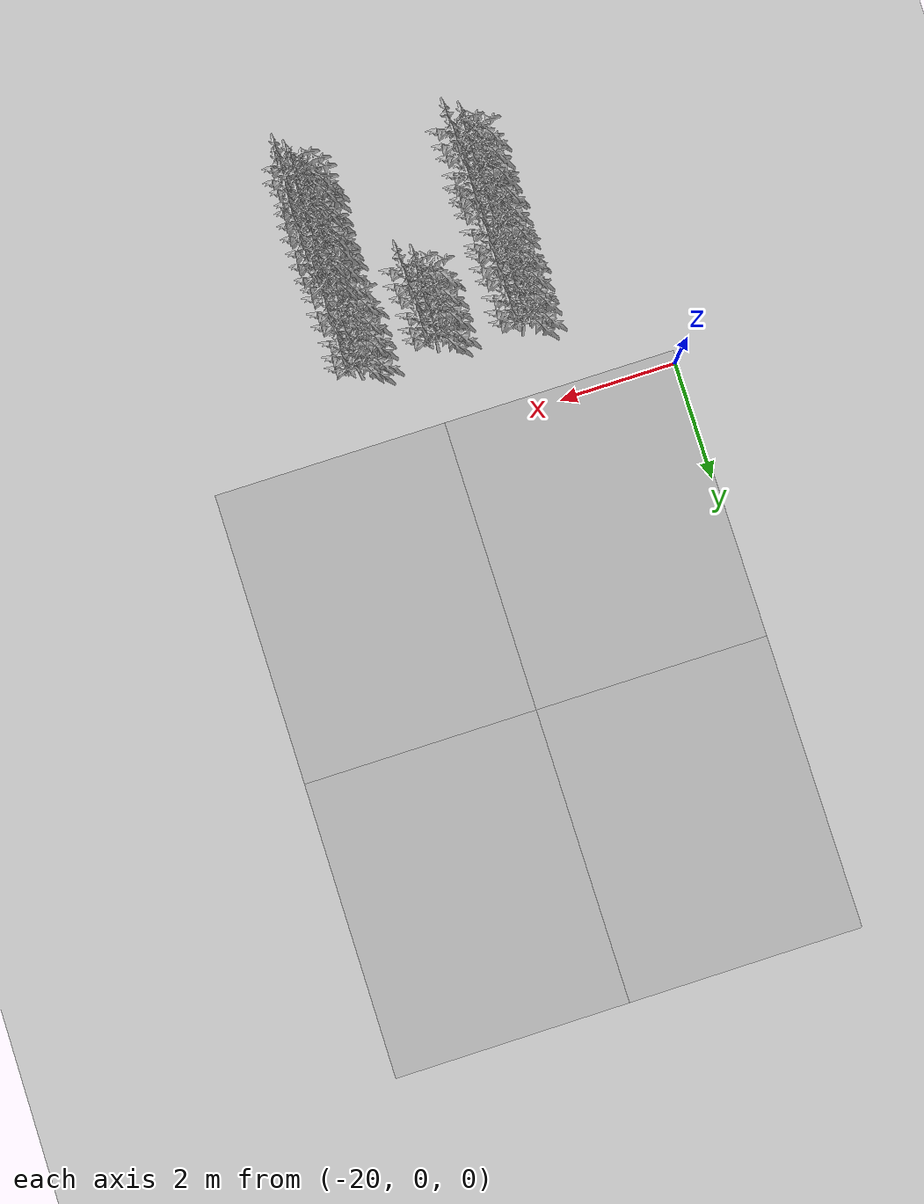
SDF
<sdf version="1.6">
 <world name="default">
  <model name="ground_plane">
   <static>1</static>
   <link name="link">
    <collision name="collision">
     <geometry><plane><normal>0 0 1</normal><size>100 100</size></plane></geometry>
     <surface>
      <contact><collide_bitmask>65535</collide_bitmask></contact>
      <friction><ode><mu>100</mu><mu2>50</mu2></ode></friction>
     </surface>
    </collision>
    <visual name="visual">
     <cast_shadows>0</cast_shadows>
     <geometry><plane><normal>0 0 1</normal><size>100 100</size></plane></geometry>
     <material>
      <script><uri>file://media/materials/scripts/gazebo.material</uri><name>Gazebo/Grey</name></script>
     </material>
    </visual>
   </link>
  </model>
  <model name="mud_box">
   <static>1</static>
   <link name="link">
    <collision name="collision"><geometry><box><size>8 10 0.02</size></box></geometry></collision>
    <visual name="visual_1">
     <pose>-2 2.5 0 0 -0 0</pose>
     <cast_shadows>0</cast_shadows>
     <geometry><box><size>4 5 0.02</size></box></geometry>
     <material>
      <script>
       <uri>model://mud_box/materials/scripts</uri>
       <uri>model://mud_box/materials/textures</uri>
       <name>vrc/mud</name>
      </script>
     </material>
    </visual>
    <visual name="visual_2">
     <pose>2 2.5 0 0 -0 0</pose>
     <cast_shadows>0</cast_shadows>
     <geometry><box><size>4 5 0.02</size></box></geometry>
     <material>
      <script>
       <uri>model://mud_box/materials/scripts</uri>
       <uri>model://mud_box/materials/textures</uri>
       <name>vrc/mud</name>
      </script>
     </material>
    </visual>
    <visual name="visual_3">
     <pose>2 -2.5 0 0 -0 0</pose>
     <cast_shadows>0</cast_shadows>
     <geometry><box><size>4 5 0.02</size></box></geometry>
     <material>
      <script>
       <uri>model://mud_box/materials/scripts</uri>
       <uri>model://mud_box/materials/textures</uri>
       <name>vrc/mud</name>
      </script>
     </material>
    </visual>
    <visual name="visual_4">
     <pose>-2 -2.5 0 0 -0 0</pose>
     <cast_shadows>0</cast_shadows>
     <geometry><box><size>4 5 0.02</size></box></geometry>
     <material>
      <script>
       <uri>model://mud_box/materials/scripts</uri>
       <uri>model://mud_box/materials/textures</uri>
       <name>vrc/mud</name>
      </script>
     </material>
    </visual>
   </link>
   <pose>-16.0443 4.76987 0 0 -0 0</pose>
  </model>
  <model name="Front_Plant_1_8">
   <model name="tomato_plant_medium">
    <static>1</static>
    <link name="link">
     <collision name="collision">
      <pose>0 0 0 1.5708 -0 0</pose>
      <geometry><mesh><scale>0.5 0.5 0.5</scale><uri>model://stick/meshes/stick.dae</uri></mesh></geometry>
     </collision>
     <visual name="visual">
      <geometry>
       <mesh><scale>5e-06 5e-06 6e-06</scale><uri>model://tomato_plant_medium/meshes/tomato-plant.dae</uri></mesh>
      </geometry>
     </visual>
    </link>
    <pose>0.087453 -0.595994 0.012396 0 -0 0</pose>
   </model>
   <model name="tomato_plant_medium_0">
    <static>1</static>
    <link name="link">
     <collision name="collision">
      <pose>0 0 0 1.5708 -0 0</pose>
      <geometry><mesh><scale>0.5 0.5 0.5</scale><uri>model://stick/meshes/stick.dae</uri></mesh></geometry>
     </collision>
     <visual name="visual">
      <geometry>
       <mesh><scale>5e-06 5e-06 6e-06</scale><uri>model://tomato_plant_medium/meshes/tomato-plant.dae</uri></mesh>
      </geometry>
     </visual>
    </link>
    <pose>-0.086166 -0.251822 0.012396 0 -0 0</pose>
   </model>
   <model name="tomato_plant_medium_1">
    <static>1</static>
    <link name="link">
     <collision name="collision">
      <pose>0 0 0 1.5708 -0 0</pose>
      <geometry><mesh><scale>0.5 0.5 0.5</scale><uri>model://stick/meshes/stick.dae</uri></mesh></geometry>
     </collision>
     <visual name="visual">
      <geometry>
       <mesh><scale>5e-06 5e-06 6e-06</scale><uri>model://tomato_plant_medium/meshes/tomato-plant.dae</uri></mesh>
      </geometry>
     </visual>
    </link>
    <pose>0.080199 0.118127 0.012396 0 -0 0</pose>
   </model>
   <model name="tomato_plant_small">
    <static>1</static>
    <link name="link">
     <collision name="collision">
      <pose>0 0 0 1.5708 -0 0</pose>
      <geometry><mesh><scale>0.5 0.45 0.5</scale><uri>model://stick/meshes/stick.dae</uri></mesh></geometry>
     </collision>
     <visual name="visual">
      <geometry>
       <mesh><scale>5e-06 5e-06 5e-06</scale><uri>model://tomato_plant_small/meshes/tomato-plant.dae</uri></mesh>
      </geometry>
     </visual>
    </link>
    <pose>0.099683 -1.12011 0.012396 0 -0 0</pose>
   </model>
   <model name="tomato_plant_small_0">
    <static>1</static>
    <link name="link">
     <collision name="collision">
      <pose>0 0 0 1.5708 -0 0</pose>
      <geometry><mesh><scale>0.5 0.45 0.5</scale><uri>model://stick/meshes/stick.dae</uri></mesh></geometry>
     </collision>
     <visual name="visual">
      <geometry>
       <mesh><scale>5e-06 5e-06 5e-06</scale><uri>model://tomato_plant_small/meshes/tomato-plant.dae</uri></mesh>
      </geometry>
     </visual>
    </link>
    <pose>-0.138771 -0.983982 0.012396 0 -0 0</pose>
   </model>
   <model name="tomato_plant_small_1">
    <static>1</static>
    <link name="link">
     <collision name="collision">
      <pose>0 0 0 1.5708 -0 0</pose>
      <geometry><mesh><scale>0.5 0.45 0.5</scale><uri>model://stick/meshes/stick.dae</uri></mesh></geometry>
     </collision>
     <visual name="visual">
      <geometry>
       <mesh><scale>5e-06 5e-06 5e-06</scale><uri>model://tomato_plant_small/meshes/tomato-plant.dae</uri></mesh>
      </geometry>
     </visual>
    </link>
    <pose>0.101334 -0.848814 0.012396 0 -0 0</pose>
   </model>
   <model name="tomato_plant_small_2">
    <static>1</static>
    <link name="link">
     <collision name="collision">
      <pose>0 0 0 1.5708 -0 0</pose>
      <geometry><mesh><scale>0.5 0.45 0.5</scale><uri>model://stick/meshes/stick.dae</uri></mesh></geometry>
     </collision>
     <visual name="visual">
      <geometry>
       <mesh><scale>5e-06 5e-06 5e-06</scale><uri>model://tomato_plant_small/meshes/tomato-plant.dae</uri></mesh>
      </geometry>
     </visual>
    </link>
    <pose>-0.103369 -0.683189 0.012396 0 -0 0</pose>
   </model>
   <model name="tomato_plant_small_3">
    <static>1</static>
    <link name="link">
     <collision name="collision">
      <pose>0 0 0 1.5708 -0 0</pose>
      <geometry><mesh><scale>0.5 0.45 0.5</scale><uri>model://stick/meshes/stick.dae</uri></mesh></geometry>
     </collision>
     <visual name="visual">
      <geometry>
       <mesh><scale>5e-06 5e-06 5e-06</scale><uri>model://tomato_plant_small/meshes/tomato-plant.dae</uri></mesh>
      </geometry>
     </visual>
    </link>
    <pose>-0.104381 -0.464811 0.012396 0 -0 0</pose>
   </model>
   <model name="tomato_plant_small_4">
    <static>1</static>
    <link name="link">
     <collision name="collision">
      <pose>0 0 0 1.5708 -0 0</pose>
      <geometry><mesh><scale>0.5 0.45 0.5</scale><uri>model://stick/meshes/stick.dae</uri></mesh></geometry>
     </collision>
     <visual name="visual">
      <geometry>
       <mesh><scale>5e-06 5e-06 5e-06</scale><uri>model://tomato_plant_small/meshes/tomato-plant.dae</uri></mesh>
      </geometry>
     </visual>
    </link>
    <pose>0.055604 -0.336879 0.012396 0 -0 0</pose>
   </model>
   <model name="tomato_plant_small_5">
    <static>1</static>
    <link name="link">
     <collision name="collision">
      <pose>0 0 0 1.5708 -0 0</pose>
      <geometry><mesh><scale>0.5 0.45 0.5</scale><uri>model://stick/meshes/stick.dae</uri></mesh></geometry>
     </collision>
     <visual name="visual">
      <geometry>
       <mesh><scale>5e-06 5e-06 5e-06</scale><uri>model://tomato_plant_small/meshes/tomato-plant.dae</uri></mesh>
      </geometry>
     </visual>
    </link>
    <pose>0.085059 -0.092572 0.012396 0 -0 0</pose>
   </model>
   <model name="tomato_plant_small_6">
    <static>1</static>
    <link name="link">
     <collision name="collision">
      <pose>0 0 0 1.5708 -0 0</pose>
      <geometry><mesh><scale>0.5 0.45 0.5</scale><uri>model://stick/meshes/stick.dae</uri></mesh></geometry>
     </collision>
     <visual name="visual">
      <geometry>
       <mesh><scale>5e-06 5e-06 5e-06</scale><uri>model://tomato_plant_small/meshes/tomato-plant.dae</uri></mesh>
      </geometry>
     </visual>
    </link>
    <pose>-0.096345 0.008888 0.012396 0 -0 0</pose>
   </model>
   <static>0</static>
   <pose>-17.809 -3.50699 0 0 -0 0</pose>
  </model>
  <model name="Front_Plant_1_9">
   <model name="tomato_plant_medium">
    <static>1</static>
    <link name="link">
     <collision name="collision">
      <pose>0 0 0 1.5708 -0 0</pose>
      <geometry><mesh><scale>0.5 0.5 0.5</scale><uri>model://stick/meshes/stick.dae</uri></mesh></geometry>
     </collision>
     <visual name="visual">
      <geometry>
       <mesh><scale>5e-06 5e-06 6e-06</scale><uri>model://tomato_plant_medium/meshes/tomato-plant.dae</uri></mesh>
      </geometry>
     </visual>
    </link>
    <pose>0.087453 -0.595994 0.012396 0 -0 0</pose>
   </model>
   <model name="tomato_plant_medium_0">
    <static>1</static>
    <link name="link">
     <collision name="collision">
      <pose>0 0 0 1.5708 -0 0</pose>
      <geometry><mesh><scale>0.5 0.5 0.5</scale><uri>model://stick/meshes/stick.dae</uri></mesh></geometry>
     </collision>
     <visual name="visual">
      <geometry>
       <mesh><scale>5e-06 5e-06 6e-06</scale><uri>model://tomato_plant_medium/meshes/tomato-plant.dae</uri></mesh>
      </geometry>
     </visual>
    </link>
    <pose>-0.086166 -0.251822 0.012396 0 -0 0</pose>
   </model>
   <model name="tomato_plant_medium_1">
    <static>1</static>
    <link name="link">
     <collision name="collision">
      <pose>0 0 0 1.5708 -0 0</pose>
      <geometry><mesh><scale>0.5 0.5 0.5</scale><uri>model://stick/meshes/stick.dae</uri></mesh></geometry>
     </collision>
     <visual name="visual">
      <geometry>
       <mesh><scale>5e-06 5e-06 6e-06</scale><uri>model://tomato_plant_medium/meshes/tomato-plant.dae</uri></mesh>
      </geometry>
     </visual>
    </link>
    <pose>0.080199 0.118127 0.012396 0 -0 0</pose>
   </model>
   <model name="tomato_plant_small">
    <static>1</static>
    <link name="link">
     <collision name="collision">
      <pose>0 0 0 1.5708 -0 0</pose>
      <geometry><mesh><scale>0.5 0.45 0.5</scale><uri>model://stick/meshes/stick.dae</uri></mesh></geometry>
     </collision>
     <visual name="visual">
      <geometry>
       <mesh><scale>5e-06 5e-06 5e-06</scale><uri>model://tomato_plant_small/meshes/tomato-plant.dae</uri></mesh>
      </geometry>
     </visual>
    </link>
    <pose>0.099683 -1.12011 0.012396 0 -0 0</pose>
   </model>
   <model name="tomato_plant_small_0">
    <static>1</static>
    <link name="link">
     <collision name="collision">
      <pose>0 0 0 1.5708 -0 0</pose>
      <geometry><mesh><scale>0.5 0.45 0.5</scale><uri>model://stick/meshes/stick.dae</uri></mesh></geometry>
     </collision>
     <visual name="visual">
      <geometry>
       <mesh><scale>5e-06 5e-06 5e-06</scale><uri>model://tomato_plant_small/meshes/tomato-plant.dae</uri></mesh>
      </geometry>
     </visual>
    </link>
    <pose>-0.138771 -0.983982 0.012396 0 -0 0</pose>
   </model>
   <model name="tomato_plant_small_1">
    <static>1</static>
    <link name="link">
     <collision name="collision">
      <pose>0 0 0 1.5708 -0 0</pose>
      <geometry><mesh><scale>0.5 0.45 0.5</scale><uri>model://stick/meshes/stick.dae</uri></mesh></geometry>
     </collision>
     <visual name="visual">
      <geometry>
       <mesh><scale>5e-06 5e-06 5e-06</scale><uri>model://tomato_plant_small/meshes/tomato-plant.dae</uri></mesh>
      </geometry>
     </visual>
    </link>
    <pose>0.101334 -0.848814 0.012396 0 -0 0</pose>
   </model>
   <model name="tomato_plant_small_2">
    <static>1</static>
    <link name="link">
     <collision name="collision">
      <pose>0 0 0 1.5708 -0 0</pose>
      <geometry><mesh><scale>0.5 0.45 0.5</scale><uri>model://stick/meshes/stick.dae</uri></mesh></geometry>
     </collision>
     <visual name="visual">
      <geometry>
       <mesh><scale>5e-06 5e-06 5e-06</scale><uri>model://tomato_plant_small/meshes/tomato-plant.dae</uri></mesh>
      </geometry>
     </visual>
    </link>
    <pose>-0.103369 -0.683189 0.012396 0 -0 0</pose>
   </model>
   <model name="tomato_plant_small_3">
    <static>1</static>
    <link name="link">
     <collision name="collision">
      <pose>0 0 0 1.5708 -0 0</pose>
      <geometry><mesh><scale>0.5 0.45 0.5</scale><uri>model://stick/meshes/stick.dae</uri></mesh></geometry>
     </collision>
     <visual name="visual">
      <geometry>
       <mesh><scale>5e-06 5e-06 5e-06</scale><uri>model://tomato_plant_small/meshes/tomato-plant.dae</uri></mesh>
      </geometry>
     </visual>
    </link>
    <pose>-0.104381 -0.464811 0.012396 0 -0 0</pose>
   </model>
   <model name="tomato_plant_small_4">
    <static>1</static>
    <link name="link">
     <collision name="collision">
      <pose>0 0 0 1.5708 -0 0</pose>
      <geometry><mesh><scale>0.5 0.45 0.5</scale><uri>model://stick/meshes/stick.dae</uri></mesh></geometry>
     </collision>
     <visual name="visual">
      <geometry>
       <mesh><scale>5e-06 5e-06 5e-06</scale><uri>model://tomato_plant_small/meshes/tomato-plant.dae</uri></mesh>
      </geometry>
     </visual>
    </link>
    <pose>0.055604 -0.336879 0.012396 0 -0 0</pose>
   </model>
   <model name="tomato_plant_small_5">
    <static>1</static>
    <link name="link">
     <collision name="collision">
      <pose>0 0 0 1.5708 -0 0</pose>
      <geometry><mesh><scale>0.5 0.45 0.5</scale><uri>model://stick/meshes/stick.dae</uri></mesh></geometry>
     </collision>
     <visual name="visual">
      <geometry>
       <mesh><scale>5e-06 5e-06 5e-06</scale><uri>model://tomato_plant_small/meshes/tomato-plant.dae</uri></mesh>
      </geometry>
     </visual>
    </link>
    <pose>0.085059 -0.092572 0.012396 0 -0 0</pose>
   </model>
   <model name="tomato_plant_small_6">
    <static>1</static>
    <link name="link">
     <collision name="collision">
      <pose>0 0 0 1.5708 -0 0</pose>
      <geometry><mesh><scale>0.5 0.45 0.5</scale><uri>model://stick/meshes/stick.dae</uri></mesh></geometry>
     </collision>
     <visual name="visual">
      <geometry>
       <mesh><scale>5e-06 5e-06 5e-06</scale><uri>model://tomato_plant_small/meshes/tomato-plant.dae</uri></mesh>
      </geometry>
     </visual>
    </link>
    <pose>-0.096345 0.008888 0.012396 0 -0 0</pose>
   </model>
   <static>0</static>
   <pose>-17.8073 -2.52385 0 0 -0 0</pose>
  </model>
  <model name="Front_Plant_1_10">
   <model name="tomato_plant_medium">
    <static>1</static>
    <link name="link">
     <collision name="collision">
      <pose>0 0 0 1.5708 -0 0</pose>
      <geometry><mesh><scale>0.5 0.5 0.5</scale><uri>model://stick/meshes/stick.dae</uri></mesh></geometry>
     </collision>
     <visual name="visual">
      <geometry>
       <mesh><scale>5e-06 5e-06 6e-06</scale><uri>model://tomato_plant_medium/meshes/tomato-plant.dae</uri></mesh>
      </geometry>
     </visual>
    </link>
    <pose>0.087453 -0.595994 0.012396 0 -0 0</pose>
   </model>
   <model name="tomato_plant_medium_0">
    <static>1</static>
    <link name="link">
     <collision name="collision">
      <pose>0 0 0 1.5708 -0 0</pose>
      <geometry><mesh><scale>0.5 0.5 0.5</scale><uri>model://stick/meshes/stick.dae</uri></mesh></geometry>
     </collision>
     <visual name="visual">
      <geometry>
       <mesh><scale>5e-06 5e-06 6e-06</scale><uri>model://tomato_plant_medium/meshes/tomato-plant.dae</uri></mesh>
      </geometry>
     </visual>
    </link>
    <pose>-0.086166 -0.251822 0.012396 0 -0 0</pose>
   </model>
   <model name="tomato_plant_medium_1">
    <static>1</static>
    <link name="link">
     <collision name="collision">
      <pose>0 0 0 1.5708 -0 0</pose>
      <geometry><mesh><scale>0.5 0.5 0.5</scale><uri>model://stick/meshes/stick.dae</uri></mesh></geometry>
     </collision>
     <visual name="visual">
      <geometry>
       <mesh><scale>5e-06 5e-06 6e-06</scale><uri>model://tomato_plant_medium/meshes/tomato-plant.dae</uri></mesh>
      </geometry>
     </visual>
    </link>
    <pose>0.080199 0.118127 0.012396 0 -0 0</pose>
   </model>
   <model name="tomato_plant_small">
    <static>1</static>
    <link name="link">
     <collision name="collision">
      <pose>0 0 0 1.5708 -0 0</pose>
      <geometry><mesh><scale>0.5 0.45 0.5</scale><uri>model://stick/meshes/stick.dae</uri></mesh></geometry>
     </collision>
     <visual name="visual">
      <geometry>
       <mesh><scale>5e-06 5e-06 5e-06</scale><uri>model://tomato_plant_small/meshes/tomato-plant.dae</uri></mesh>
      </geometry>
     </visual>
    </link>
    <pose>0.099683 -1.12011 0.012396 0 -0 0</pose>
   </model>
   <model name="tomato_plant_small_0">
    <static>1</static>
    <link name="link">
     <collision name="collision">
      <pose>0 0 0 1.5708 -0 0</pose>
      <geometry><mesh><scale>0.5 0.45 0.5</scale><uri>model://stick/meshes/stick.dae</uri></mesh></geometry>
     </collision>
     <visual name="visual">
      <geometry>
       <mesh><scale>5e-06 5e-06 5e-06</scale><uri>model://tomato_plant_small/meshes/tomato-plant.dae</uri></mesh>
      </geometry>
     </visual>
    </link>
    <pose>-0.138771 -0.983982 0.012396 0 -0 0</pose>
   </model>
   <model name="tomato_plant_small_1">
    <static>1</static>
    <link name="link">
     <collision name="collision">
      <pose>0 0 0 1.5708 -0 0</pose>
      <geometry><mesh><scale>0.5 0.45 0.5</scale><uri>model://stick/meshes/stick.dae</uri></mesh></geometry>
     </collision>
     <visual name="visual">
      <geometry>
       <mesh><scale>5e-06 5e-06 5e-06</scale><uri>model://tomato_plant_small/meshes/tomato-plant.dae</uri></mesh>
      </geometry>
     </visual>
    </link>
    <pose>0.101334 -0.848814 0.012396 0 -0 0</pose>
   </model>
   <model name="tomato_plant_small_2">
    <static>1</static>
    <link name="link">
     <collision name="collision">
      <pose>0 0 0 1.5708 -0 0</pose>
      <geometry><mesh><scale>0.5 0.45 0.5</scale><uri>model://stick/meshes/stick.dae</uri></mesh></geometry>
     </collision>
     <visual name="visual">
      <geometry>
       <mesh><scale>5e-06 5e-06 5e-06</scale><uri>model://tomato_plant_small/meshes/tomato-plant.dae</uri></mesh>
      </geometry>
     </visual>
    </link>
    <pose>-0.103369 -0.683189 0.012396 0 -0 0</pose>
   </model>
   <model name="tomato_plant_small_3">
    <static>1</static>
    <link name="link">
     <collision name="collision">
      <pose>0 0 0 1.5708 -0 0</pose>
      <geometry><mesh><scale>0.5 0.45 0.5</scale><uri>model://stick/meshes/stick.dae</uri></mesh></geometry>
     </collision>
     <visual name="visual">
      <geometry>
       <mesh><scale>5e-06 5e-06 5e-06</scale><uri>model://tomato_plant_small/meshes/tomato-plant.dae</uri></mesh>
      </geometry>
     </visual>
    </link>
    <pose>-0.104381 -0.464811 0.012396 0 -0 0</pose>
   </model>
   <model name="tomato_plant_small_4">
    <static>1</static>
    <link name="link">
     <collision name="collision">
      <pose>0 0 0 1.5708 -0 0</pose>
      <geometry><mesh><scale>0.5 0.45 0.5</scale><uri>model://stick/meshes/stick.dae</uri></mesh></geometry>
     </collision>
     <visual name="visual">
      <geometry>
       <mesh><scale>5e-06 5e-06 5e-06</scale><uri>model://tomato_plant_small/meshes/tomato-plant.dae</uri></mesh>
      </geometry>
     </visual>
    </link>
    <pose>0.055604 -0.336879 0.012396 0 -0 0</pose>
   </model>
   <model name="tomato_plant_small_5">
    <static>1</static>
    <link name="link">
     <collision name="collision">
      <pose>0 0 0 1.5708 -0 0</pose>
      <geometry><mesh><scale>0.5 0.45 0.5</scale><uri>model://stick/meshes/stick.dae</uri></mesh></geometry>
     </collision>
     <visual name="visual">
      <geometry>
       <mesh><scale>5e-06 5e-06 5e-06</scale><uri>model://tomato_plant_small/meshes/tomato-plant.dae</uri></mesh>
      </geometry>
     </visual>
    </link>
    <pose>0.085059 -0.092572 0.012396 0 -0 0</pose>
   </model>
   <model name="tomato_plant_small_6">
    <static>1</static>
    <link name="link">
     <collision name="collision">
      <pose>0 0 0 1.5708 -0 0</pose>
      <geometry><mesh><scale>0.5 0.45 0.5</scale><uri>model://stick/meshes/stick.dae</uri></mesh></geometry>
     </collision>
     <visual name="visual">
      <geometry>
       <mesh><scale>5e-06 5e-06 5e-06</scale><uri>model://tomato_plant_small/meshes/tomato-plant.dae</uri></mesh>
      </geometry>
     </visual>
    </link>
    <pose>-0.096345 0.008888 0.012396 0 -0 0</pose>
   </model>
   <static>0</static>
   <pose>-17.8093 -1.37891 0 0 -0 0</pose>
  </model>
  <model name="Front_Plant_1_11">
   <model name="tomato_plant_medium">
    <static>1</static>
    <link name="link">
     <collision name="collision">
      <pose>0 0 0 1.5708 -0 0</pose>
      <geometry><mesh><scale>0.5 0.5 0.5</scale><uri>model://stick/meshes/stick.dae</uri></mesh></geometry>
     </collision>
     <visual name="visual">
      <geometry>
       <mesh><scale>5e-06 5e-06 6e-06</scale><uri>model://tomato_plant_medium/meshes/tomato-plant.dae</uri></mesh>
      </geometry>
     </visual>
    </link>
    <pose>0.087453 -0.595994 0.012396 0 -0 0</pose>
   </model>
   <model name="tomato_plant_medium_0">
    <static>1</static>
    <link name="link">
     <collision name="collision">
      <pose>0 0 0 1.5708 -0 0</pose>
      <geometry><mesh><scale>0.5 0.5 0.5</scale><uri>model://stick/meshes/stick.dae</uri></mesh></geometry>
     </collision>
     <visual name="visual">
      <geometry>
       <mesh><scale>5e-06 5e-06 6e-06</scale><uri>model://tomato_plant_medium/meshes/tomato-plant.dae</uri></mesh>
      </geometry>
     </visual>
    </link>
    <pose>-0.086166 -0.251822 0.012396 0 -0 0</pose>
   </model>
   <model name="tomato_plant_medium_1">
    <static>1</static>
    <link name="link">
     <collision name="collision">
      <pose>0 0 0 1.5708 -0 0</pose>
      <geometry><mesh><scale>0.5 0.5 0.5</scale><uri>model://stick/meshes/stick.dae</uri></mesh></geometry>
     </collision>
     <visual name="visual">
      <geometry>
       <mesh><scale>5e-06 5e-06 6e-06</scale><uri>model://tomato_plant_medium/meshes/tomato-plant.dae</uri></mesh>
      </geometry>
     </visual>
    </link>
    <pose>0.080199 0.118127 0.012396 0 -0 0</pose>
   </model>
   <model name="tomato_plant_small">
    <static>1</static>
    <link name="link">
     <collision name="collision">
      <pose>0 0 0 1.5708 -0 0</pose>
      <geometry><mesh><scale>0.5 0.45 0.5</scale><uri>model://stick/meshes/stick.dae</uri></mesh></geometry>
     </collision>
     <visual name="visual">
      <geometry>
       <mesh><scale>5e-06 5e-06 5e-06</scale><uri>model://tomato_plant_small/meshes/tomato-plant.dae</uri></mesh>
      </geometry>
     </visual>
    </link>
    <pose>0.099683 -1.12011 0.012396 0 -0 0</pose>
   </model>
   <model name="tomato_plant_small_0">
    <static>1</static>
    <link name="link">
     <collision name="collision">
      <pose>0 0 0 1.5708 -0 0</pose>
      <geometry><mesh><scale>0.5 0.45 0.5</scale><uri>model://stick/meshes/stick.dae</uri></mesh></geometry>
     </collision>
     <visual name="visual">
      <geometry>
       <mesh><scale>5e-06 5e-06 5e-06</scale><uri>model://tomato_plant_small/meshes/tomato-plant.dae</uri></mesh>
      </geometry>
     </visual>
    </link>
    <pose>-0.138771 -0.983982 0.012396 0 -0 0</pose>
   </model>
   <model name="tomato_plant_small_1">
    <static>1</static>
    <link name="link">
     <collision name="collision">
      <pose>0 0 0 1.5708 -0 0</pose>
      <geometry><mesh><scale>0.5 0.45 0.5</scale><uri>model://stick/meshes/stick.dae</uri></mesh></geometry>
     </collision>
     <visual name="visual">
      <geometry>
       <mesh><scale>5e-06 5e-06 5e-06</scale><uri>model://tomato_plant_small/meshes/tomato-plant.dae</uri></mesh>
      </geometry>
     </visual>
    </link>
    <pose>0.101334 -0.848814 0.012396 0 -0 0</pose>
   </model>
   <model name="tomato_plant_small_2">
    <static>1</static>
    <link name="link">
     <collision name="collision">
      <pose>0 0 0 1.5708 -0 0</pose>
      <geometry><mesh><scale>0.5 0.45 0.5</scale><uri>model://stick/meshes/stick.dae</uri></mesh></geometry>
     </collision>
     <visual name="visual">
      <geometry>
       <mesh><scale>5e-06 5e-06 5e-06</scale><uri>model://tomato_plant_small/meshes/tomato-plant.dae</uri></mesh>
      </geometry>
     </visual>
    </link>
    <pose>-0.103369 -0.683189 0.012396 0 -0 0</pose>
   </model>
   <model name="tomato_plant_small_3">
    <static>1</static>
    <link name="link">
     <collision name="collision">
      <pose>0 0 0 1.5708 -0 0</pose>
      <geometry><mesh><scale>0.5 0.45 0.5</scale><uri>model://stick/meshes/stick.dae</uri></mesh></geometry>
     </collision>
     <visual name="visual">
      <geometry>
       <mesh><scale>5e-06 5e-06 5e-06</scale><uri>model://tomato_plant_small/meshes/tomato-plant.dae</uri></mesh>
      </geometry>
     </visual>
    </link>
    <pose>-0.104381 -0.464811 0.012396 0 -0 0</pose>
   </model>
   <model name="tomato_plant_small_4">
    <static>1</static>
    <link name="link">
     <collision name="collision">
      <pose>0 0 0 1.5708 -0 0</pose>
      <geometry><mesh><scale>0.5 0.45 0.5</scale><uri>model://stick/meshes/stick.dae</uri></mesh></geometry>
     </collision>
     <visual name="visual">
      <geometry>
       <mesh><scale>5e-06 5e-06 5e-06</scale><uri>model://tomato_plant_small/meshes/tomato-plant.dae</uri></mesh>
      </geometry>
     </visual>
    </link>
    <pose>0.055604 -0.336879 0.012396 0 -0 0</pose>
   </model>
   <model name="tomato_plant_small_5">
    <static>1</static>
    <link name="link">
     <collision name="collision">
      <pose>0 0 0 1.5708 -0 0</pose>
      <geometry><mesh><scale>0.5 0.45 0.5</scale><uri>model://stick/meshes/stick.dae</uri></mesh></geometry>
     </collision>
     <visual name="visual">
      <geometry>
       <mesh><scale>5e-06 5e-06 5e-06</scale><uri>model://tomato_plant_small/meshes/tomato-plant.dae</uri></mesh>
      </geometry>
     </visual>
    </link>
    <pose>0.085059 -0.092572 0.012396 0 -0 0</pose>
   </model>
   <model name="tomato_plant_small_6">
    <static>1</static>
    <link name="link">
     <collision name="collision">
      <pose>0 0 0 1.5708 -0 0</pose>
      <geometry><mesh><scale>0.5 0.45 0.5</scale><uri>model://stick/meshes/stick.dae</uri></mesh></geometry>
     </collision>
     <visual name="visual">
      <geometry>
       <mesh><scale>5e-06 5e-06 5e-06</scale><uri>model://tomato_plant_small/meshes/tomato-plant.dae</uri></mesh>
      </geometry>
     </visual>
    </link>
    <pose>-0.096345 0.008888 0.012396 0 -0 0</pose>
   </model>
   <static>0</static>
   <pose>-16.3842 -1.53283 0 0 -0 0</pose>
  </model>
  <model name="MIddle_Plant_1_1">
   <model name="tomato_plant_big">
    <static>1</static>
    <link name="link">
     <collision name="collision">
      <pose>0 0 0 1.5708 -0 0</pose>
      <geometry><mesh><scale>0.5 0.6 0.5</scale><uri>model://stick/meshes/stick.dae</uri></mesh></geometry>
     </collision>
     <visual name="visual">
      <geometry>
       <mesh><scale>5e-06 5e-06 7e-06</scale><uri>model://tomato_plant_big/meshes/tomato-plant.dae</uri></mesh>
      </geometry>
     </visual>
    </link>
    <pose>-0.144318 -0.693607 -0 0 -0 0</pose>
   </model>
   <model name="tomato_plant_big_0">
    <static>1</static>
    <link name="link">
     <collision name="collision">
      <pose>0 0 0 1.5708 -0 0</pose>
      <geometry><mesh><scale>0.5 0.6 0.5</scale><uri>model://stick/meshes/stick.dae</uri></mesh></geometry>
     </collision>
     <visual name="visual">
      <geometry>
       <mesh><scale>5e-06 5e-06 7e-06</scale><uri>model://tomato_plant_big/meshes/tomato-plant.dae</uri></mesh>
      </geometry>
     </visual>
    </link>
    <pose>-0.11784 -0.519827 0 0 -0 0</pose>
   </model>
   <model name="tomato_plant_big_1">
    <static>1</static>
    <link name="link">
     <collision name="collision">
      <pose>0 0 0 1.5708 -0 0</pose>
      <geometry><mesh><scale>0.5 0.6 0.5</scale><uri>model://stick/meshes/stick.dae</uri></mesh></geometry>
     </collision>
     <visual name="visual">
      <geometry>
       <mesh><scale>5e-06 5e-06 7e-06</scale><uri>model://tomato_plant_big/meshes/tomato-plant.dae</uri></mesh>
      </geometry>
     </visual>
    </link>
    <pose>0.073755 -0.247584 0 0 -0 0</pose>
   </model>
   <model name="tomato_plant_big_10">
    <static>1</static>
    <link name="link">
     <collision name="collision">
      <pose>0 0 0 1.5708 -0 0</pose>
      <geometry><mesh><scale>0.5 0.6 0.5</scale><uri>model://stick/meshes/stick.dae</uri></mesh></geometry>
     </collision>
     <visual name="visual">
      <geometry>
       <mesh><scale>5e-06 5e-06 7e-06</scale><uri>model://tomato_plant_big/meshes/tomato-plant.dae</uri></mesh>
      </geometry>
     </visual>
    </link>
    <pose>0.037052 1.07094 0 0 -0 0</pose>
   </model>
   <model name="tomato_plant_big_2">
    <static>1</static>
    <link name="link">
     <collision name="collision">
      <pose>0 0 0 1.5708 -0 0</pose>
      <geometry><mesh><scale>0.5 0.6 0.5</scale><uri>model://stick/meshes/stick.dae</uri></mesh></geometry>
     </collision>
     <visual name="visual">
      <geometry>
       <mesh><scale>5e-06 5e-06 7e-06</scale><uri>model://tomato_plant_big/meshes/tomato-plant.dae</uri></mesh>
      </geometry>
     </visual>
    </link>
    <pose>-0.076926 -0.131165 0 0 -0 0</pose>
   </model>
   <model name="tomato_plant_big_3">
    <static>1</static>
    <link name="link">
     <collision name="collision">
      <pose>0 0 0 1.5708 -0 0</pose>
      <geometry><mesh><scale>0.5 0.6 0.5</scale><uri>model://stick/meshes/stick.dae</uri></mesh></geometry>
     </collision>
     <visual name="visual">
      <geometry>
       <mesh><scale>5e-06 5e-06 7e-06</scale><uri>model://tomato_plant_big/meshes/tomato-plant.dae</uri></mesh>
      </geometry>
     </visual>
    </link>
    <pose>0.093714 -0.038386 0 0 -0 0</pose>
   </model>
   <model name="tomato_plant_big_4">
    <static>1</static>
    <link name="link">
     <collision name="collision">
      <pose>0 0 0 1.5708 -0 0</pose>
      <geometry><mesh><scale>0.5 0.6 0.5</scale><uri>model://stick/meshes/stick.dae</uri></mesh></geometry>
     </collision>
     <visual name="visual">
      <geometry>
       <mesh><scale>5e-06 5e-06 7e-06</scale><uri>model://tomato_plant_big/meshes/tomato-plant.dae</uri></mesh>
      </geometry>
     </visual>
    </link>
    <pose>0.103117 0.184356 0 0 -0 0</pose>
   </model>
   <model name="tomato_plant_big_5">
    <static>1</static>
    <link name="link">
     <collision name="collision">
      <pose>0 0 0 1.5708 -0 0</pose>
      <geometry><mesh><scale>0.5 0.6 0.5</scale><uri>model://stick/meshes/stick.dae</uri></mesh></geometry>
     </collision>
     <visual name="visual">
      <geometry>
       <mesh><scale>5e-06 5e-06 7e-06</scale><uri>model://tomato_plant_big/meshes/tomato-plant.dae</uri></mesh>
      </geometry>
     </visual>
    </link>
    <pose>-0.074883 0.301479 0 0 -0 0</pose>
   </model>
   <model name="tomato_plant_big_6">
    <static>1</static>
    <link name="link">
     <collision name="collision">
      <pose>0 0 0 1.5708 -0 0</pose>
      <geometry><mesh><scale>0.5 0.6 0.5</scale><uri>model://stick/meshes/stick.dae</uri></mesh></geometry>
     </collision>
     <visual name="visual">
      <geometry>
       <mesh><scale>5e-06 5e-06 7e-06</scale><uri>model://tomato_plant_big/meshes/tomato-plant.dae</uri></mesh>
      </geometry>
     </visual>
    </link>
    <pose>-0.096921 0.484007 0 0 -0 0</pose>
   </model>
   <model name="tomato_plant_big_7">
    <static>1</static>
    <link name="link">
     <collision name="collision">
      <pose>0 0 0 1.5708 -0 0</pose>
      <geometry><mesh><scale>0.5 0.6 0.5</scale><uri>model://stick/meshes/stick.dae</uri></mesh></geometry>
     </collision>
     <visual name="visual">
      <geometry>
       <mesh><scale>5e-06 5e-06 7e-06</scale><uri>model://tomato_plant_big/meshes/tomato-plant.dae</uri></mesh>
      </geometry>
     </visual>
    </link>
    <pose>0.107491 0.653976 0 0 -0 0</pose>
   </model>
   <model name="tomato_plant_big_8">
    <static>1</static>
    <link name="link">
     <collision name="collision">
      <pose>0 0 0 1.5708 -0 0</pose>
      <geometry><mesh><scale>0.5 0.6 0.5</scale><uri>model://stick/meshes/stick.dae</uri></mesh></geometry>
     </collision>
     <visual name="visual">
      <geometry>
       <mesh><scale>5e-06 5e-06 7e-06</scale><uri>model://tomato_plant_big/meshes/tomato-plant.dae</uri></mesh>
      </geometry>
     </visual>
    </link>
    <pose>-0.07985 0.768549 0 0 -0 0</pose>
   </model>
   <model name="tomato_plant_big_9">
    <static>1</static>
    <link name="link">
     <collision name="collision">
      <pose>0 0 0 1.5708 -0 0</pose>
      <geometry><mesh><scale>0.5 0.6 0.5</scale><uri>model://stick/meshes/stick.dae</uri></mesh></geometry>
     </collision>
     <visual name="visual">
      <geometry>
       <mesh><scale>5e-06 5e-06 7e-06</scale><uri>model://tomato_plant_big/meshes/tomato-plant.dae</uri></mesh>
      </geometry>
     </visual>
    </link>
    <pose>0.098361 0.890852 0 0 -0 0</pose>
   </model>
   <model name="tomato_plant_medium">
    <static>1</static>
    <link name="link">
     <collision name="collision">
      <pose>0 0 0 1.5708 -0 0</pose>
      <geometry><mesh><scale>0.5 0.5 0.5</scale><uri>model://stick/meshes/stick.dae</uri></mesh></geometry>
     </collision>
     <visual name="visual">
      <geometry>
       <mesh><scale>5e-06 5e-06 6e-06</scale><uri>model://tomato_plant_medium/meshes/tomato-plant.dae</uri></mesh>
      </geometry>
     </visual>
    </link>
    <pose>0.056913 -1.05328 0 0 -0 0</pose>
   </model>
   <model name="tomato_plant_medium_0">
    <static>1</static>
    <link name="link">
     <collision name="collision">
      <pose>0 0 0 1.5708 -0 0</pose>
      <geometry><mesh><scale>0.5 0.5 0.5</scale><uri>model://stick/meshes/stick.dae</uri></mesh></geometry>
     </collision>
     <visual name="visual">
      <geometry>
       <mesh><scale>5e-06 5e-06 6e-06</scale><uri>model://tomato_plant_medium/meshes/tomato-plant.dae</uri></mesh>
      </geometry>
     </visual>
    </link>
    <pose>-0.092719 -0.905729 0 0 -0 0</pose>
   </model>
   <model name="tomato_plant_medium_1">
    <static>1</static>
    <link name="link">
     <collision name="collision">
      <pose>0 0 0 1.5708 -0 0</pose>
      <geometry><mesh><scale>0.5 0.5 0.5</scale><uri>model://stick/meshes/stick.dae</uri></mesh></geometry>
     </collision>
     <visual name="visual">
      <geometry>
       <mesh><scale>5e-06 5e-06 6e-06</scale><uri>model://tomato_plant_medium/meshes/tomato-plant.dae</uri></mesh>
      </geometry>
     </visual>
    </link>
    <pose>0.108962 -0.829637 0 0 -0 0</pose>
   </model>
   <model name="tomato_plant_medium_2">
    <static>1</static>
    <link name="link">
     <collision name="collision">
      <pose>0 0 0 1.5708 -0 0</pose>
      <geometry><mesh><scale>0.5 0.5 0.5</scale><uri>model://stick/meshes/stick.dae</uri></mesh></geometry>
     </collision>
     <visual name="visual">
      <geometry>
       <mesh><scale>5e-06 5e-06 6e-06</scale><uri>model://tomato_plant_medium/meshes/tomato-plant.dae</uri></mesh>
      </geometry>
     </visual>
    </link>
    <pose>0.071216 -0.652507 0 0 -0 0</pose>
   </model>
   <model name="tomato_plant_medium_3">
    <static>1</static>
    <link name="link">
     <collision name="collision">
      <pose>0 0 0 1.5708 -0 0</pose>
      <geometry><mesh><scale>0.5 0.5 0.5</scale><uri>model://stick/meshes/stick.dae</uri></mesh></geometry>
     </collision>
     <visual name="visual">
      <geometry>
       <mesh><scale>5e-06 5e-06 6e-06</scale><uri>model://tomato_plant_medium/meshes/tomato-plant.dae</uri></mesh>
      </geometry>
     </visual>
    </link>
    <pose>0.047335 -0.423046 0 0 -0 0</pose>
   </model>
   <model name="tomato_plant_medium_4">
    <static>1</static>
    <link name="link">
     <collision name="collision">
      <pose>0 0 0 1.5708 -0 0</pose>
      <geometry><mesh><scale>0.5 0.5 0.5</scale><uri>model://stick/meshes/stick.dae</uri></mesh></geometry>
     </collision>
     <visual name="visual">
      <geometry>
       <mesh><scale>5e-06 5e-06 6e-06</scale><uri>model://tomato_plant_medium/meshes/tomato-plant.dae</uri></mesh>
      </geometry>
     </visual>
    </link>
    <pose>-0.081012 -0.320324 0 0 -0 0</pose>
   </model>
   <model name="tomato_plant_medium_5">
    <static>1</static>
    <link name="link">
     <collision name="collision">
      <pose>0 0 0 1.5708 -0 0</pose>
      <geometry><mesh><scale>0.5 0.5 0.5</scale><uri>model://stick/meshes/stick.dae</uri></mesh></geometry>
     </collision>
     <visual name="visual">
      <geometry>
       <mesh><scale>5e-06 5e-06 6e-06</scale><uri>model://tomato_plant_medium/meshes/tomato-plant.dae</uri></mesh>
      </geometry>
     </visual>
    </link>
    <pose>-0.07452 0.095988 0 0 -0 0</pose>
   </model>
   <model name="tomato_plant_medium_6">
    <static>1</static>
    <link name="link">
     <collision name="collision">
      <pose>0 0 0 1.5708 -0 0</pose>
      <geometry><mesh><scale>0.5 0.5 0.5</scale><uri>model://stick/meshes/stick.dae</uri></mesh></geometry>
     </collision>
     <visual name="visual">
      <geometry>
       <mesh><scale>5e-06 5e-06 6e-06</scale><uri>model://tomato_plant_medium/meshes/tomato-plant.dae</uri></mesh>
      </geometry>
     </visual>
    </link>
    <pose>0.101424 0.395443 0 0 -0 0</pose>
   </model>
   <model name="tomato_plant_small">
    <static>1</static>
    <link name="link">
     <collision name="collision">
      <pose>0 0 0 1.5708 -0 0</pose>
      <geometry><mesh><scale>0.5 0.45 0.5</scale><uri>model://stick/meshes/stick.dae</uri></mesh></geometry>
     </collision>
     <visual name="visual">
      <geometry>
       <mesh><scale>5e-06 5e-06 5e-06</scale><uri>model://tomato_plant_small/meshes/tomato-plant.dae</uri></mesh>
      </geometry>
     </visual>
    </link>
    <pose>-0.060351 0.969512 0 0 -0 0</pose>
   </model>
   <static>0</static>
   <pose>-15.0151 -3.7519 0 0 -0 0</pose>
  </model>
  <model name="Front_Plant_1_13">
   <model name="tomato_plant_medium">
    <static>1</static>
    <link name="link">
     <collision name="collision">
      <pose>0 0 0 1.5708 -0 0</pose>
      <geometry><mesh><scale>0.5 0.5 0.5</scale><uri>model://stick/meshes/stick.dae</uri></mesh></geometry>
     </collision>
     <visual name="visual">
      <geometry>
       <mesh><scale>5e-06 5e-06 6e-06</scale><uri>model://tomato_plant_medium/meshes/tomato-plant.dae</uri></mesh>
      </geometry>
     </visual>
    </link>
    <pose>0.087453 -0.595994 0.012396 0 -0 0</pose>
   </model>
   <model name="tomato_plant_medium_0">
    <static>1</static>
    <link name="link">
     <collision name="collision">
      <pose>0 0 0 1.5708 -0 0</pose>
      <geometry><mesh><scale>0.5 0.5 0.5</scale><uri>model://stick/meshes/stick.dae</uri></mesh></geometry>
     </collision>
     <visual name="visual">
      <geometry>
       <mesh><scale>5e-06 5e-06 6e-06</scale><uri>model://tomato_plant_medium/meshes/tomato-plant.dae</uri></mesh>
      </geometry>
     </visual>
    </link>
    <pose>-0.086166 -0.251822 0.012396 0 -0 0</pose>
   </model>
   <model name="tomato_plant_medium_1">
    <static>1</static>
    <link name="link">
     <collision name="collision">
      <pose>0 0 0 1.5708 -0 0</pose>
      <geometry><mesh><scale>0.5 0.5 0.5</scale><uri>model://stick/meshes/stick.dae</uri></mesh></geometry>
     </collision>
     <visual name="visual">
      <geometry>
       <mesh><scale>5e-06 5e-06 6e-06</scale><uri>model://tomato_plant_medium/meshes/tomato-plant.dae</uri></mesh>
      </geometry>
     </visual>
    </link>
    <pose>0.080199 0.118127 0.012396 0 -0 0</pose>
   </model>
   <model name="tomato_plant_small">
    <static>1</static>
    <link name="link">
     <collision name="collision">
      <pose>0 0 0 1.5708 -0 0</pose>
      <geometry><mesh><scale>0.5 0.45 0.5</scale><uri>model://stick/meshes/stick.dae</uri></mesh></geometry>
     </collision>
     <visual name="visual">
      <geometry>
       <mesh><scale>5e-06 5e-06 5e-06</scale><uri>model://tomato_plant_small/meshes/tomato-plant.dae</uri></mesh>
      </geometry>
     </visual>
    </link>
    <pose>0.099683 -1.12011 0.012396 0 -0 0</pose>
   </model>
   <model name="tomato_plant_small_0">
    <static>1</static>
    <link name="link">
     <collision name="collision">
      <pose>0 0 0 1.5708 -0 0</pose>
      <geometry><mesh><scale>0.5 0.45 0.5</scale><uri>model://stick/meshes/stick.dae</uri></mesh></geometry>
     </collision>
     <visual name="visual">
      <geometry>
       <mesh><scale>5e-06 5e-06 5e-06</scale><uri>model://tomato_plant_small/meshes/tomato-plant.dae</uri></mesh>
      </geometry>
     </visual>
    </link>
    <pose>-0.138771 -0.983982 0.012396 0 -0 0</pose>
   </model>
   <model name="tomato_plant_small_1">
    <static>1</static>
    <link name="link">
     <collision name="collision">
      <pose>0 0 0 1.5708 -0 0</pose>
      <geometry><mesh><scale>0.5 0.45 0.5</scale><uri>model://stick/meshes/stick.dae</uri></mesh></geometry>
     </collision>
     <visual name="visual">
      <geometry>
       <mesh><scale>5e-06 5e-06 5e-06</scale><uri>model://tomato_plant_small/meshes/tomato-plant.dae</uri></mesh>
      </geometry>
     </visual>
    </link>
    <pose>0.101334 -0.848814 0.012396 0 -0 0</pose>
   </model>
   <model name="tomato_plant_small_2">
    <static>1</static>
    <link name="link">
     <collision name="collision">
      <pose>0 0 0 1.5708 -0 0</pose>
      <geometry><mesh><scale>0.5 0.45 0.5</scale><uri>model://stick/meshes/stick.dae</uri></mesh></geometry>
     </collision>
     <visual name="visual">
      <geometry>
       <mesh><scale>5e-06 5e-06 5e-06</scale><uri>model://tomato_plant_small/meshes/tomato-plant.dae</uri></mesh>
      </geometry>
     </visual>
    </link>
    <pose>-0.103369 -0.683189 0.012396 0 -0 0</pose>
   </model>
   <model name="tomato_plant_small_3">
    <static>1</static>
    <link name="link">
     <collision name="collision">
      <pose>0 0 0 1.5708 -0 0</pose>
      <geometry><mesh><scale>0.5 0.45 0.5</scale><uri>model://stick/meshes/stick.dae</uri></mesh></geometry>
     </collision>
     <visual name="visual">
      <geometry>
       <mesh><scale>5e-06 5e-06 5e-06</scale><uri>model://tomato_plant_small/meshes/tomato-plant.dae</uri></mesh>
      </geometry>
     </visual>
    </link>
    <pose>-0.104381 -0.464811 0.012396 0 -0 0</pose>
   </model>
   <model name="tomato_plant_small_4">
    <static>1</static>
    <link name="link">
     <collision name="collision">
      <pose>0 0 0 1.5708 -0 0</pose>
      <geometry><mesh><scale>0.5 0.45 0.5</scale><uri>model://stick/meshes/stick.dae</uri></mesh></geometry>
     </collision>
     <visual name="visual">
      <geometry>
       <mesh><scale>5e-06 5e-06 5e-06</scale><uri>model://tomato_plant_small/meshes/tomato-plant.dae</uri></mesh>
      </geometry>
     </visual>
    </link>
    <pose>0.055604 -0.336879 0.012396 0 -0 0</pose>
   </model>
   <model name="tomato_plant_small_5">
    <static>1</static>
    <link name="link">
     <collision name="collision">
      <pose>0 0 0 1.5708 -0 0</pose>
      <geometry><mesh><scale>0.5 0.45 0.5</scale><uri>model://stick/meshes/stick.dae</uri></mesh></geometry>
     </collision>
     <visual name="visual">
      <geometry>
       <mesh><scale>5e-06 5e-06 5e-06</scale><uri>model://tomato_plant_small/meshes/tomato-plant.dae</uri></mesh>
      </geometry>
     </visual>
    </link>
    <pose>0.085059 -0.092572 0.012396 0 -0 0</pose>
   </model>
   <model name="tomato_plant_small_6">
    <static>1</static>
    <link name="link">
     <collision name="collision">
      <pose>0 0 0 1.5708 -0 0</pose>
      <geometry><mesh><scale>0.5 0.45 0.5</scale><uri>model://stick/meshes/stick.dae</uri></mesh></geometry>
     </collision>
     <visual name="visual">
      <geometry>
       <mesh><scale>5e-06 5e-06 5e-06</scale><uri>model://tomato_plant_small/meshes/tomato-plant.dae</uri></mesh>
      </geometry>
     </visual>
    </link>
    <pose>-0.096345 0.008888 0.012396 0 -0 0</pose>
   </model>
   <static>0</static>
   <pose>-15.0492 -1.47847 0 0 -0 0</pose>
  </model>
 </world>
</sdf>
